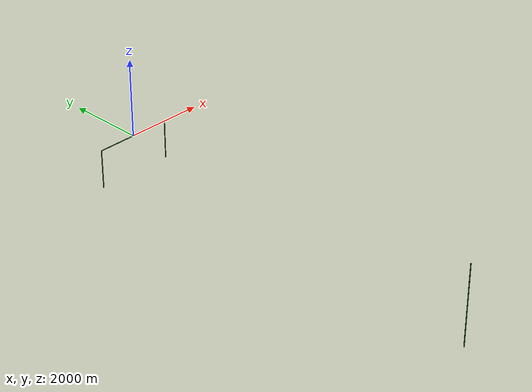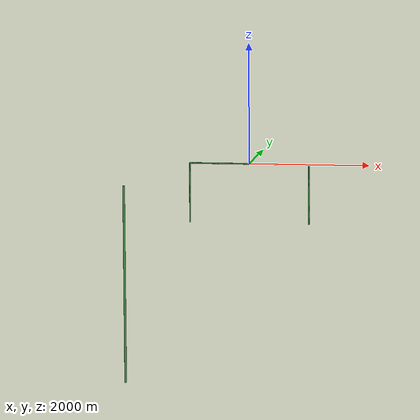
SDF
<?xml version="1.0"?>
<sdf version='1.9'>
  <model name='preq_gate'>
        <static>true</static>

        <link name='preq_gate'>
            <collision name='preq_gate_collision'>
                <geometry>
                <mesh>
                    <uri>model://preq_gate/preq_gate.dae</uri>
                </mesh>
                <scale>0.001 0.001 0.001</scale>
                </geometry>
            </collision>

            <visual name='preq_gate_visual'>
                <geometry>
                <mesh>
                    <uri>model://preq_gate/preq_gate.dae</uri>
                </mesh>
                <scale>0.001 0.001 0.001</scale>
                </geometry>
            </visual>

        </link>
  </model>
</sdf>
